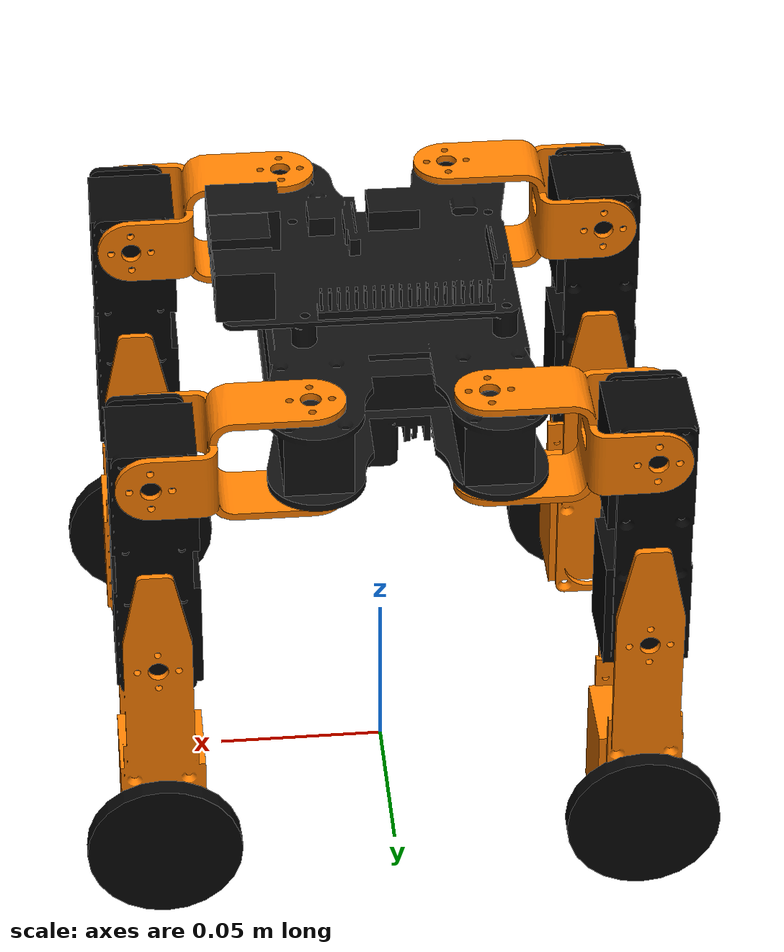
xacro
<?xml version="1.0" ?>
<robot name="ads-mt" xmlns:xacro="http://www.ros.org/wiki/xacro">

    <xacro:include filename="$(find adsmt_description)/adsmt_description/urdf/adsmt-wheeled.gazebo" />

    <link name = "base_footprint">
        <!-- Nth in here -->
    </link>
    <joint name = "body_link_joint" type='fixed'>
        <origin xyz="0 0.00 0.1565" rpy="0 0 0"/>
        <parent link="base_footprint"/>
        <child link="body"/>
    </joint>

    <material name="yellow">
        <color rgba="1 0.5 0 1"/>
    </material>

    <material name="black">
        <color rgba="0.02 0.02 0.02 1"/>
    </material>

    <material name="grey">
        <color rgba="0.06 0.06 0.06 1"/>
    </material>

    <!-- Base Link -->
    <link name="body">
        <visual>
            <geometry>
                <mesh filename="$(find adsmt_description)/adsmt_description/urdf/designs/body.stl" scale=" 0.001 0.001 0.001"/>
            </geometry>
            <material name='grey'/>
        </visual>
        <collision>
            <density>1060.0</density>
           <origin xyz="0 0 0"/>
           <geometry>
              <mesh filename="$(find adsmt_description)/adsmt_description/urdf/designs/body.stl" scale=" 0.001 0.001 0.001"/>
           </geometry>
        </collision>
        <inertial>
            <mass value="0.29"/>
            <origin xyz="0 0 0"/>
            <inertia ixx="0.000193" ixy="0.0" ixz="0.0" iyy="0.000694" iyz="0.0" izz="0.000529"/>
        </inertial>
    </link>

    <!-- Leg 1 -->
    <!-- Joints and Links -->
    <joint name="joint_1" type="revolute">
        <parent link="body"/>
        <child link="joint_1_link"/>
        <origin xyz="-0.0255 -0.060 0.0" rpy="0 0 -1.5708"/>
        <axis xyz="0 0 1"/>
        <limit lower="-3.1415" upper="3.1415" effort="50" velocity="2.0"/>
    </joint>
    <link name="joint_1_link">
        <inertial>
            <mass value="0.018"/>
            <origin xyz="0 0 0"/>
            <inertia ixx="0.000008268" ixy="0.0" ixz="0.0" iyy="0.000008268" iyz="0.0" izz="0.000003468"/>
        </inertial>
        <visual>
            <geometry>
                <mesh filename="$(find adsmt_description)/adsmt_description/urdf/designs/double_u.stl" scale=" 0.001 0.001 0.001"/>
            </geometry>
            <material name='yellow'/>
        </visual>
        <collision>
            <geometry>
                <mesh filename="$(find adsmt_description)/adsmt_description/urdf/designs/double_u.stl" scale=" 0.001 0.001 0.001"/>

            </geometry>
        </collision>
    </link>

    <!-- Thigh 1 -->
    <joint name="joint_1_1" type="revolute">
        <parent link="joint_1_link"/>
        <child link="joint_1_thigh"/>
        <origin xyz="-0.0 -0.046 -0.0" rpy="-1.5708 0 0"/>
        <axis xyz="1 0 0"/>
        <limit lower="-3.1415" upper="3.1415" effort="50" velocity="2.0"/>
    </joint>
    <link name="joint_1_thigh">
        <inertial>
            <mass value="0.06"/>
            <origin xyz="0 0 0"/>
            <inertia ixx="0.0000193" ixy="0.0" ixz="0.0" iyy="0.0000202" iyz="0.0" izz="0.00000331"/>
        </inertial>
        <visual>

            <geometry>
                <mesh filename="$(find adsmt_description)/adsmt_description/urdf/designs/thigh.stl" scale=" 0.001 0.001 0.001"/>
            </geometry>
            <material name='black'></material>
        </visual>
        <collision>
            <origin xyz="0 0 0"/>
            <geometry>
                <mesh filename="$(find adsmt_description)/adsmt_description/urdf/designs/thigh.stl" scale=" 0.001 0.001 0.001"/>

            </geometry>
        </collision>
    </link>

    <!-- Shin 1 -->
    <joint name="joint_1_1_1" type="revolute">
        <parent link="joint_1_thigh"/>
        <child link="joint_1_shin"/>
        <origin xyz="-0.0 0.065 0.0" rpy="3.1415 0 0"/>
        <axis xyz="1 0 0"/>
        <limit lower="-3.1415" upper="3.1415" effort="50" velocity="2.0"/>
    </joint>
    <link name="joint_1_shin">
        <inertial>
            <mass value="0.06"/>
            <origin xyz="0 0 0"/>
            <inertia ixx="0.00003064" ixy="0.0" ixz="0" iyy="0.00003232" iyz="0.0" izz="0.0000041"/>

        </inertial>
        <visual>
            <geometry>
                <mesh filename="$(find adsmt_description)/adsmt_description/urdf/designs/shin.stl" scale=" 0.001 0.001 0.001"/>
            </geometry>
            <material name='yellow'></material>
        </visual>
        <collision>
            <geometry>
                <mesh filename="$(find adsmt_description)/adsmt_description/urdf/designs/shin.stl" scale=" 0.001 0.001 0.001"/>
            </geometry>
        </collision>
    </link>

    <!-- Wheel 1 -->
    <joint name="wheel_1" type="continuous">
        <parent link="joint_1_shin"/>
        <child link="joint_1_wheel"/>
        <origin xyz="0.018 -0.065 0.0" rpy="1.5708 0 1.5708"/>
        <axis xyz="0 0 1"/>
        <dynamics damping="0.01" friction='1.0' />
        <limit lower="-3.1415" upper="3.1415" effort="150" velocity="50.0"/>
    </joint>
    <link name="joint_1_wheel">
        <inertial>
            <mass value="0.06"/>
            <origin xyz="0 0 0"/>
            <inertia ixx="0.000135" ixy="0.0" ixz="0" iyy="0.000135" iyz="0.0" izz="0.000265"/>

        </inertial>
        <visual>
            <geometry>
                <cylinder radius="0.023" length = "0.0055"/>
            </geometry>
            <material name='black'></material>
        </visual>
        <collision>
            <geometry>
                <cylinder radius="0.023" length = "0.0055"/>
            </geometry>
        </collision>
    </link>

    <!-- /Leg 1 -->

    <!-- Leg 2 -->
    <joint name="joint_2" type="revolute">
        <parent link="body"/>
        <child link="joint_2_link"/>
        <origin xyz="-0.0255 0.06 0.0" rpy="0 0 -1.5708"/>
        <axis xyz="0 0 1"/>
        <limit lower="-3.1415" upper="3.1415" effort="50" velocity="2.0"/>
    </joint>
    <link name="joint_2_link">
        <inertial>
            <mass value="0.018"/>
            <origin xyz="0 0 0"/>
            <inertia ixx="0.000133" ixy="0.0" ixz="0.0" iyy="0.000133" iyz="0.0" izz="0.0000558"/>

        </inertial>
        <visual>
            <geometry>
                <mesh filename="$(find adsmt_description)/adsmt_description/urdf/designs/double_u.stl" scale=" 0.001 0.001 0.001"/>
            </geometry>
            <material name='yellow'/>
        </visual>

        <collision>
            <geometry>
                <mesh filename="$(find adsmt_description)/adsmt_description/urdf/designs/double_u.stl" scale=" 0.001 0.001 0.001"/>
            </geometry>
        </collision>

    </link>

    <!-- Thigh 2 -->
    <joint name="joint_2_1" type="revolute">
        <parent link="joint_2_link"/>
        <child link="joint_2_thigh"/>
        <origin xyz="-0.0 -0.046 0.0" rpy="-1.5708 0 0"/>
        <axis xyz="1 0 0"/>
        <limit lower="-3.1415" upper="3.1415" effort="50" velocity="2.0"/>
    </joint>
    <link name="joint_2_thigh">
        <inertial>
            <mass value="0.06"/>
            <origin xyz="0 0 0"/>
            <inertia ixx="0.0000193" ixy="0.0" ixz="0.0" iyy="0.0000202" iyz="0.0" izz="0.00000331"/>
        </inertial>
        <visual>
            <geometry>
                <mesh filename="$(find adsmt_description)/adsmt_description/urdf/designs/thigh.stl" scale=" 0.001 0.001 0.001"/>
            </geometry>
            <material name='black'></material>
        </visual>
        <collision>
            <geometry>
                <mesh filename="$(find adsmt_description)/adsmt_description/urdf/designs/thigh.stl" scale=" 0.001 0.001 0.001"/>
            </geometry>
        </collision>
    </link>

    <!-- Shin 2 -->
    <joint name="joint_2_1_1" type="revolute">
        <parent link="joint_2_thigh"/>
        <child link="joint_2_shin"/>
        <origin xyz="-0.0 0.065 0.0" rpy="3.1415 0 0"/>
        <axis xyz="1 0 0"/>
        <limit lower="-3.1415" upper="3.1415" effort="50" velocity="2.0"/>
    </joint>
    <link name="joint_2_shin">
        <inertial>
            <mass value="0.06"/>
            <origin xyz="0 0 0"/>
            <inertia ixx="0.00003064" ixy="0.0" ixz="0" iyy="0.00003232" iyz="0.0" izz="0.0000041"/>

        </inertial>
        <visual>
            <geometry>
                <mesh filename="$(find adsmt_description)/adsmt_description/urdf/designs/shin.stl" scale=" 0.001 0.001 0.001"/>
            </geometry>
            <material name='yellow'></material>
        </visual>
        <collision>
            <geometry>
                <mesh filename="$(find adsmt_description)/adsmt_description/urdf/designs/shin.stl" scale=" 0.001 0.001 0.001"/>
            </geometry>
        </collision>
    </link>
    <joint name="wheel_2" type="continuous">
        <parent link="joint_2_shin"/>
        <child link="joint_2_wheel"/>
        <origin xyz="-0.018 -0.065 0.0" rpy="1.5708 0 1.5708"/>
        <dynamics damping="0.01" friction='1.0' />
        <axis xyz="0 0 1"/>
        <limit lower="-3.1415" upper="3.1415" effort="150" velocity="50.0"/>
    </joint>
    <!-- Wheel 2 -->
    <link name="joint_2_wheel">
        <inertial>
            <mass value="0.06"/>
            <origin xyz="0 0 0"/>
            <inertia ixx="0.000135" ixy="0.0" ixz="0" iyy="0.000135" iyz="0.0" izz="0.000265"/>

        </inertial>
        <visual>
            <geometry>
                <cylinder radius="0.023" length = "0.0055"/>
            </geometry>
            <material name='black'></material>
        </visual>
        <collision>
            <geometry>
                <cylinder radius="0.023" length = "0.0055"/>
            </geometry>
        </collision>
    </link>

    <!-- /Leg 2-->

    <!-- Leg 3 -->
    <joint name="joint_3" type="revolute">
        <parent link="body"/>
        <child link="joint_3_link"/>
        <origin xyz="0.025 -0.060 -0.0" rpy="0 0 1.5708"/>
        <axis xyz="0 0 1"/>
        <limit lower="-3.1415" upper="3.1415" effort="50" velocity="2.0"/>
    </joint>
    <link name="joint_3_link">
        <inertial>
            <mass value="0.018"/>
            <origin xyz="0 0 0"/>
            <inertia ixx="0.000133" ixy="0.0" ixz="0.0" iyy="0.000133" iyz="0.0" izz="0.0000558"/>
        </inertial>
        <visual>
            <geometry>
                <mesh filename="$(find adsmt_description)/adsmt_description/urdf/designs/double_u.stl" scale=" 0.001 0.001 0.001"/>
            </geometry>
            <material name='yellow'></material>
        </visual>
        <collision>
            <geometry>
                <mesh filename="$(find adsmt_description)/adsmt_description/urdf/designs/double_u.stl" scale=" 0.001 0.001 0.001"/>
            </geometry>
        </collision>

    </link>

    <!-- Thigh 3 -->
    <joint name="joint_3_1" type="revolute">
        <parent link="joint_3_link"/>
        <child link="joint_3_thigh"/>
        <origin xyz="-0.00 -0.046 -0.00" rpy="-1.5708 0 0"/>
        <axis xyz="1 0 0"/>
        <limit lower="-3.1415" upper="3.1415" effort="50" velocity="2.0"/>
    </joint>
    <link name="joint_3_thigh">
        <inertial>
            <mass value="0.06"/>
            <origin xyz="0 0 0"/>
            <inertia ixx="0.0000193" ixy="0.0" ixz="0.0" iyy="0.0000202" iyz="0.0" izz="0.00000331"/>
        </inertial>
        <visual>
            <geometry>
                <mesh filename="$(find adsmt_description)/adsmt_description/urdf/designs/thigh.stl" scale=" 0.001 0.001 0.001"/>
            </geometry>
            <material name='black'></material>
        </visual>
        <collision>
            <geometry>
                <mesh filename="$(find adsmt_description)/adsmt_description/urdf/designs/thigh.stl" scale=" 0.001 0.001 0.001"/>
            </geometry>
        </collision>
    </link>

    <!-- Shin 3 -->
    <joint name="joint_3_1_1" type="revolute">
        <parent link="joint_3_thigh"/>
        <child link="joint_3_shin"/>
        <origin xyz="-0.0 0.065 -0.00" rpy="3.1415 0 0"/>
        <axis xyz="1 0 0"/>
        <limit lower="-3.1415" upper="3.1415" effort="50" velocity="2.0"/>
    </joint>
    <link name="joint_3_shin">
        <inertial>
            <mass value="0.06"/>
            <origin xyz="0 0 0"/>
            <inertia ixx="0.00003064" ixy="0.0" ixz="0" iyy="0.00003232" iyz="0.0" izz="0.0000041"/>
        </inertial>
        <visual>
            <geometry>
                <mesh filename="$(find adsmt_description)/adsmt_description/urdf/designs/shin.stl" scale=" 0.001 0.001 0.001"/>
            </geometry>
            <material name='yellow'></material>
        </visual>
        <collision>
            <geometry>
                <mesh filename="$(find adsmt_description)/adsmt_description/urdf/designs/shin.stl" scale=" 0.001 0.001 0.001"/>
            </geometry>
        </collision>
    </link>

    <!-- Wheel 3 -->
    <joint name="wheel_3" type="continuous">
        <parent link="joint_3_shin"/>
        <dynamics damping="0.01" friction='1.0' />
        <child link="joint_3_wheel"/>
        <origin xyz="-0.018 -0.065 0.0" rpy="1.5708 0 1.5708"/>
        <axis xyz="0 0 1"/>
        <limit lower="-3.1415" upper="3.1415" effort="150" velocity="50.0"/>
    </joint>
    <link name="joint_3_wheel">
        <inertial>
            <mass value="0.06"/>
            <origin xyz="0 0 0"/>
            <inertia ixx="0.000135" ixy="0.0" ixz="0" iyy="0.000135" iyz="0.0" izz="0.000265"/>

        </inertial>
        <visual>
            <geometry>
                <cylinder radius="0.023" length = "0.0055"/>
            </geometry>
            <material name='black'></material>
        </visual>
        <collision>
            <geometry>
                <cylinder radius="0.023" length = "0.0055"/>
            </geometry>
        </collision>
    </link>

    <!-- /Leg 3-->

    <!-- Leg 4 -->
    <joint name="joint_4" type="revolute">
        <parent link="body"/>
        <child link="joint_4_link"/>
        <origin xyz="0.0250 0.06 0.0" rpy="0 0 1.5708"/>
        <axis xyz="0 0 1"/>
        <limit lower="-3.1415" upper="3.1415" effort="50" velocity="2.0"/>
    </joint>
    <link name="joint_4_link">
        <inertial>
            <mass value="0.018"/>
            <origin xyz="0 0 0"/>
            <inertia ixx="0.000133" ixy="0.0" ixz="0.0" iyy="0.000133" iyz="0.0" izz="0.0000558"/>
        </inertial>
        <visual>
            <geometry>
                <mesh filename="$(find adsmt_description)/adsmt_description/urdf/designs/double_u.stl" scale=" 0.001 0.001 0.001"/>
            </geometry>
            <material name='yellow'></material>
        </visual>
        <collision>
            <geometry>
                <mesh filename="$(find adsmt_description)/adsmt_description/urdf/designs/double_u.stl" scale=" 0.001 0.001 0.001"/>
            </geometry>
        </collision>
    </link>

    <!-- Thigh 4 -->
    <joint name="joint_4_1" type="revolute">
        <parent link="joint_4_link"/>
        <child link="joint_4_thigh"/>
        <origin xyz="-0.0 -0.046 0.0" rpy="-1.5708 0 0"/>
        <axis xyz="1 0 0"/>
        <limit lower="-3.1415" upper="3.1415" effort="50" velocity="2.0"/>
    </joint>
    <link name="joint_4_thigh">
        <inertial>
            <mass value="0.06"/>
            <origin xyz="0 0 0"/>
            <inertia ixx="0.0000193" ixy="0.0" ixz="0.0" iyy="0.0000202" iyz="0.0" izz="0.00000331"/>
        </inertial>
        <visual>
            <geometry>
                <mesh filename="$(find adsmt_description)/adsmt_description/urdf/designs/thigh.stl" scale=" 0.001 0.001 0.001"/>
            </geometry>
            <material name='black'></material>
        </visual>
        <collision>
            <geometry>
                <mesh filename="$(find adsmt_description)/adsmt_description/urdf/designs/thigh.stl" scale=" 0.001 0.001 0.001"/>
            </geometry>
        </collision>
    </link>

    <!-- Shin 4 -->
    <joint name="joint_4_1_1" type="revolute">
        <parent link="joint_4_thigh"/>
        <child link="joint_4_shin"/>
        <origin xyz="-0.0 0.065 0.0" rpy="3.1415 0 0"/>
        <axis xyz="1 0 0"/>
        <limit lower="-3.1415" upper="3.1415" effort="50" velocity="2.0"/>
    </joint>
    <link name="joint_4_shin">
        <inertial>
            <mass value="0.06"/>
            <origin xyz="0 0 0"/>
            <inertia ixx="0.00003064" ixy="0.0" ixz="0" iyy="0.00003232" iyz="0.0" izz="0.0000041"/>
        </inertial>
        <visual>
            <geometry>
                <mesh filename="$(find adsmt_description)/adsmt_description/urdf/designs/shin.stl" scale=" 0.001 0.001 0.001"/>
            </geometry>
            <material name='yellow'></material>
        </visual>
        <collision>
            <geometry>
                <mesh filename="$(find adsmt_description)/adsmt_description/urdf/designs/shin.stl" scale=" 0.001 0.001 0.001"/>
            </geometry>
        </collision>
    </link>

    <!-- Wheel 4 -->
    <joint name="wheel_4" type="continuous">
        <parent link="joint_4_shin"/>
        <dynamics damping="0.01" friction='1.0' />
        <child link="joint_4_wheel"/>
        <origin xyz="0.018 -0.065 0.0" rpy="1.5708 0 1.5708"/>
        <axis xyz="0 0 1"/>
        <limit lower="-3.1415" upper="3.1415" effort="150" velocity="50.0"/>
    </joint>
    <link name="joint_4_wheel">
        <inertial>
            <mass value="0.06"/>
            <origin xyz="0 0 0"/>
            <inertia ixx="0.000135" ixy="0.0" ixz="0" iyy="0.000135" iyz="0.0" izz="0.000265"/>

        </inertial>
        <visual>
            <geometry>
                <cylinder radius="0.023" length = "0.0055"/>
            </geometry>
            <material name='black'></material>
        </visual>
        <collision>
            <geometry>
                <cylinder radius="0.023" length = "0.0055"/>
            </geometry>
        </collision>
    </link>
    <!-- /Leg 4 -->
</robot>
